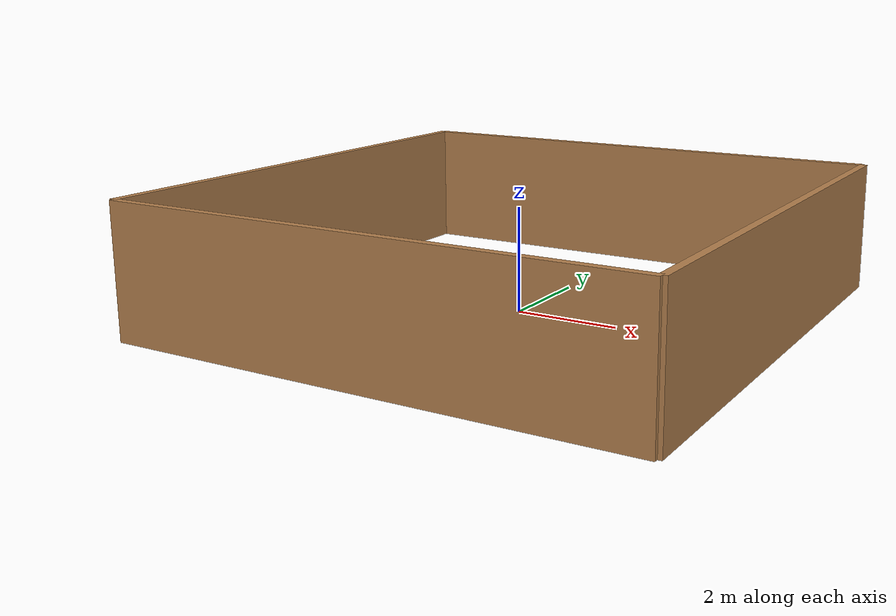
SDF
<?xml version='1.0'?>
<sdf version='1.6'>
  <model name='create_four_walls'>
    <static>1</static>
    <link name='Wall_101'>
      <pose frame=''>-5 0 0 0 0 -1.5708</pose>
      <self_collide>0</self_collide>
      <kinematic>0</kinematic>
      <visual name='Wall_101_Visual'>
        <pose frame=''>0 0 1.25 0 -0 0</pose>
        <geometry>
          <box>
            <size>10 0.15 2.5</size>
          </box>
        </geometry>
        <material>
          <script>
            <uri>file://media/materials/scripts/gazebo.material</uri>
            <name>Gazebo/Wood</name>
          </script>
          <ambient>1 1 1 1</ambient>
          <diffuse>1 1 1 1</diffuse>
          <specular>0.2 0.2 0.2 1</specular>
          <emissive>0 0 0 1</emissive>
        </material>
        <cast_shadows>0</cast_shadows>
        <transparency>0</transparency>
      </visual>
      <collision name='Wall_101_Collision'>
        <laser_retro>0</laser_retro>
        <max_contacts>10</max_contacts>
        <pose frame=''>0 0 1.25 0 -0 0</pose>
        <geometry>
          <box>
            <size>10 0.15 2.5</size>
          </box>
        </geometry>
        <surface>
          <friction>
            <ode>
              <mu>1</mu>
              <mu2>1</mu2>
              <fdir1>0 0 0</fdir1>
              <slip1>0</slip1>
              <slip2>0</slip2>
            </ode>
            <torsional>
              <coefficient>1</coefficient>
              <patch_radius>0</patch_radius>
              <surface_radius>0</surface_radius>
              <use_patch_radius>1</use_patch_radius>
              <ode>
                <slip>0</slip>
              </ode>
            </torsional>
          </friction>
          <bounce>
            <restitution_coefficient>0</restitution_coefficient>
            <threshold>1e+06</threshold>
          </bounce>
          <contact>
            <collide_without_contact>0</collide_without_contact>
            <collide_without_contact_bitmask>1</collide_without_contact_bitmask>
            <collide_bitmask>1</collide_bitmask>
            <ode>
              <soft_cfm>0</soft_cfm>
              <soft_erp>0.2</soft_erp>
              <kp>1e+13</kp>
              <kd>1</kd>
              <max_vel>0.01</max_vel>
              <min_depth>0</min_depth>
            </ode>
            <bullet>
              <split_impulse>1</split_impulse>
              <split_impulse_penetration_threshold>-0.01</split_impulse_penetration_threshold>
              <soft_cfm>0</soft_cfm>
              <soft_erp>0.2</soft_erp>
              <kp>1e+13</kp>
              <kd>1</kd>
            </bullet>
          </contact>
        </surface>
      </collision>
    </link>

    <link name='Wall_102'>
      <pose frame=''>5 0 0 0 0 -1.5708</pose>
      <self_collide>0</self_collide>
      <kinematic>0</kinematic>
      <visual name='Wall_102_Visual'>
        <pose frame=''>0 0 1.25 0 -0 0</pose>
        <geometry>
          <box>
            <size>10 0.15 2.5</size>
          </box>
        </geometry>
        <material>
          <script>
            <uri>file://media/materials/scripts/gazebo.material</uri>
            <name>Gazebo/Wood</name>
          </script>
          <ambient>1 1 1 1</ambient>
          <diffuse>1 1 1 1</diffuse>
          <specular>0.2 0.2 0.2 1</specular>
          <emissive>0 0 0 1</emissive>
        </material>
        <cast_shadows>0</cast_shadows>
        <transparency>0</transparency>
      </visual>
      <collision name='Wall_102_Collision'>
        <laser_retro>0</laser_retro>
        <max_contacts>10</max_contacts>
        <pose frame=''>0 0 1.25 0 -0 0</pose>
        <geometry>
          <box>
            <size>10 0.15 2.5</size>
          </box>
        </geometry>
        <surface>
          <friction>
            <ode>
              <mu>1</mu>
              <mu2>1</mu2>
              <fdir1>0 0 0</fdir1>
              <slip1>0</slip1>
              <slip2>0</slip2>
            </ode>
            <torsional>
              <coefficient>1</coefficient>
              <patch_radius>0</patch_radius>
              <surface_radius>0</surface_radius>
              <use_patch_radius>1</use_patch_radius>
              <ode>
                <slip>0</slip>
              </ode>
            </torsional>
          </friction>
          <bounce>
            <restitution_coefficient>0</restitution_coefficient>
            <threshold>1e+06</threshold>
          </bounce>
          <contact>
            <collide_without_contact>0</collide_without_contact>
            <collide_without_contact_bitmask>1</collide_without_contact_bitmask>
            <collide_bitmask>1</collide_bitmask>
            <ode>
              <soft_cfm>0</soft_cfm>
              <soft_erp>0.2</soft_erp>
              <kp>1e+13</kp>
              <kd>1</kd>
              <max_vel>0.01</max_vel>
              <min_depth>0</min_depth>
            </ode>
            <bullet>
              <split_impulse>1</split_impulse>
              <split_impulse_penetration_threshold>-0.01</split_impulse_penetration_threshold>
              <soft_cfm>0</soft_cfm>
              <soft_erp>0.2</soft_erp>
              <kp>1e+13</kp>
              <kd>1</kd>
            </bullet>
          </contact>
        </surface>
      </collision>
    </link>

    <link name='Wall_103'>
      <pose frame=''>0 5 0 0 0 0</pose>
      <self_collide>0</self_collide>
      <kinematic>0</kinematic>
      <visual name='Wall_103_Visual'>
        <pose frame=''>0 0 1.25 0 -0 0</pose>
        <geometry>
          <box>
            <size>10 0.15 2.5</size>
          </box>
        </geometry>
        <material>
          <script>
            <uri>file://media/materials/scripts/gazebo.material</uri>
            <name>Gazebo/Wood</name>
          </script>
          <ambient>1 1 1 1</ambient>
          <diffuse>1 1 1 1</diffuse>
          <specular>0.2 0.2 0.2 1</specular>
          <emissive>0 0 0 1</emissive>
        </material>
        <cast_shadows>0</cast_shadows>
        <transparency>0</transparency>
      </visual>
      <collision name='Wall_103_Collision'>
        <laser_retro>0</laser_retro>
        <max_contacts>10</max_contacts>
        <pose frame=''>0 0 1.25 0 -0 0</pose>
        <geometry>
          <box>
            <size>10 0.15 2.5</size>
          </box>
        </geometry>
        <surface>
          <friction>
            <ode>
              <mu>1</mu>
              <mu2>1</mu2>
              <fdir1>0 0 0</fdir1>
              <slip1>0</slip1>
              <slip2>0</slip2>
            </ode>
            <torsional>
              <coefficient>1</coefficient>
              <patch_radius>0</patch_radius>
              <surface_radius>0</surface_radius>
              <use_patch_radius>1</use_patch_radius>
              <ode>
                <slip>0</slip>
              </ode>
            </torsional>
          </friction>
          <bounce>
            <restitution_coefficient>0</restitution_coefficient>
            <threshold>1e+06</threshold>
          </bounce>
          <contact>
            <collide_without_contact>0</collide_without_contact>
            <collide_without_contact_bitmask>1</collide_without_contact_bitmask>
            <collide_bitmask>1</collide_bitmask>
            <ode>
              <soft_cfm>0</soft_cfm>
              <soft_erp>0.2</soft_erp>
              <kp>1e+13</kp>
              <kd>1</kd>
              <max_vel>0.01</max_vel>
              <min_depth>0</min_depth>
            </ode>
            <bullet>
              <split_impulse>1</split_impulse>
              <split_impulse_penetration_threshold>-0.01</split_impulse_penetration_threshold>
              <soft_cfm>0</soft_cfm>
              <soft_erp>0.2</soft_erp>
              <kp>1e+13</kp>
              <kd>1</kd>
            </bullet>
          </contact>
        </surface>
      </collision>
    </link>

    <link name='Wall_104'>
      <pose frame=''>0 -5 0 0 0 0</pose>
      <self_collide>0</self_collide>
      <kinematic>0</kinematic>
      <visual name='Wall_104_Visual'>
        <pose frame=''>0 0 1.25 0 -0 0</pose>
        <geometry>
          <box>
            <size>10 0.15 2.5</size>
          </box>
        </geometry>
        <material>
          <script>
            <uri>file://media/materials/scripts/gazebo.material</uri>
            <name>Gazebo/Wood</name>
          </script>
          <ambient>1 1 1 1</ambient>
          <diffuse>1 1 1 1</diffuse>
          <specular>0.2 0.2 0.2 1</specular>
          <emissive>0 0 0 1</emissive>
        </material>
        <cast_shadows>0</cast_shadows>
        <transparency>0</transparency>
      </visual>
      <collision name='Wall_104_Collision'>
        <laser_retro>0</laser_retro>
        <max_contacts>10</max_contacts>
        <pose frame=''>0 0 1.25 0 -0 0</pose>
        <geometry>
          <box>
            <size>10 0.15 2.5</size>
          </box>
        </geometry>
        <surface>
          <friction>
            <ode>
              <mu>1</mu>
              <mu2>1</mu2>
              <fdir1>0 0 0</fdir1>
              <slip1>0</slip1>
              <slip2>0</slip2>
            </ode>
            <torsional>
              <coefficient>1</coefficient>
              <patch_radius>0</patch_radius>
              <surface_radius>0</surface_radius>
              <use_patch_radius>1</use_patch_radius>
              <ode>
                <slip>0</slip>
              </ode>
            </torsional>
          </friction>
          <bounce>
            <restitution_coefficient>0</restitution_coefficient>
            <threshold>1e+06</threshold>
          </bounce>
          <contact>
            <collide_without_contact>0</collide_without_contact>
            <collide_without_contact_bitmask>1</collide_without_contact_bitmask>
            <collide_bitmask>1</collide_bitmask>
            <ode>
              <soft_cfm>0</soft_cfm>
              <soft_erp>0.2</soft_erp>
              <kp>1e+13</kp>
              <kd>1</kd>
              <max_vel>0.01</max_vel>
              <min_depth>0</min_depth>
            </ode>
            <bullet>
              <split_impulse>1</split_impulse>
              <split_impulse_penetration_threshold>-0.01</split_impulse_penetration_threshold>
              <soft_cfm>0</soft_cfm>
              <soft_erp>0.2</soft_erp>
              <kp>1e+13</kp>
              <kd>1</kd>
            </bullet>
          </contact>
        </surface>
      </collision>
    </link>

  </model>
</sdf>
